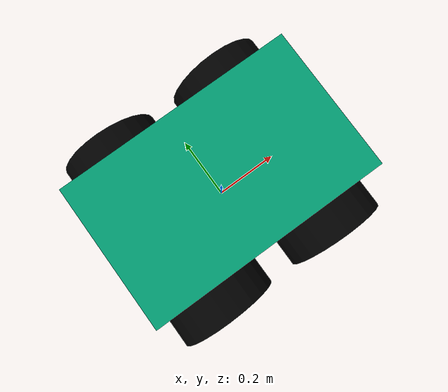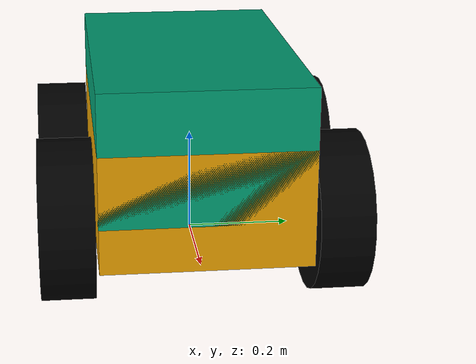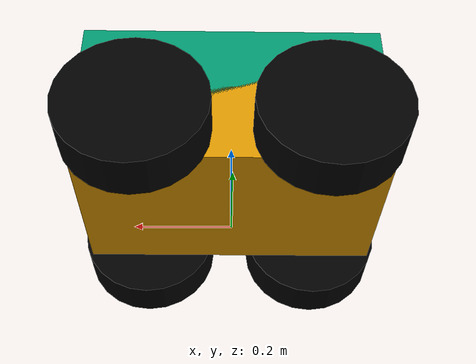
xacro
<?xml version="1.0"?>
<robot xmlns:xacro="http://ros.org/wiki/xacro" name="atrv">
	<xacro:property name="width" value=".39" />
	<xacro:property name="len" value=".64" />
	<xacro:property name="wradius" value=".15"/>
	<xacro:property name="wthick" value=".1"/>
	<link name="base_link">
			<visual>
					<geometry>
							<box size="${len} ${width} .22"/>
					</geometry>
			</visual>
			<collision>
					<geometry>
							<box size="${len} ${width} .22"/>
					</geometry>
			</collision>
	</link>

  <link name="base_footprint">
    <visual>
      <geometry>
        <box size="0.001 0.001 0.001"/>
      </geometry>
    </visual>
    <collision>
      <origin rpy="0 0 0" xyz="0 0 0"/>
      <geometry>
        <box size="0.001 0.001 0.001"/>
      </geometry>
    </collision>
  </link>

  <link name="top_cover">
			<visual>
					<geometry>
							<box size="${len} ${width} .25"/>
					</geometry>
			</visual>
			<collision>
					<geometry>
							<box size="${len} ${width} .25"/>
					</geometry>
			</collision>
	</link>

	<joint name="base_to_top_cover" type="fixed">
		<parent link="base_link"/>
		<child link="top_cover"/>
		<origin xyz="0 0 .1"/>
	</joint>

  <joint name="base_footprint_joint" type="fixed">
    <origin rpy="0 0 0" xyz="0 0 0.150"/>
    <parent link="base_footprint"/>
    <child link="base_link"/>
  </joint>

	<xacro:macro name="wheel" params="prefix fb lr">
		<!-- note front => fb = 1, left => lr = 1 -->
		<link name="${prefix}_wheel">
			<visual>
				<geometry>
					<cylinder length="${wthick}" radius="${wradius}"/>
				</geometry>
				<material name="black">
					<color rgba="0 0 0 1"/>
				</material>
			</visual>
			<collision>
				<geometry>
					<cylinder length="${wthick}" radius="${wradius}"/>
				</geometry>
			</collision>
		</link>

		<joint name="base_to_${prefix}_wheel" type="continuous">
			<parent link="base_link"/>
			<child link="${prefix}_wheel"/>
			<axis xyz="0 0 -1"/>
			<origin rpy="1.57075 0 0" xyz="${fb*.19} ${lr*.25} -.05" />
      <limit effort="5.0" velocity="5.0"/>
      <joint_properties damping="2.0" friction="{steer_joint_friction}"/>
		</joint>
    <transmission name="${prefix}_joint_wheel_steer_trans">
      <type>transmission_interface/SimpleTransmission</type>
      <joint name="$base_to_${prefix}_wheel"/>
      <actuator name="${prefix}_joint_wheel_steer_motor">
        <hardwareInterface>EffortJointInterface</hardwareInterface>
        <mechanicalReduction>100.0</mechanicalReduction>
        <motorTorqueConstant>1</motorTorqueConstant>
      </actuator>
    </transmission>
	</xacro:macro>

	<xacro:wheel prefix="front_left" fb="1" lr="1" />
	<xacro:wheel prefix="front_right" fb="1" lr="-1" />
	<xacro:wheel prefix="rear_left" fb="-1" lr="1" />
	<xacro:wheel prefix="rear_right" fb="-1" lr="-1" />
</robot>
